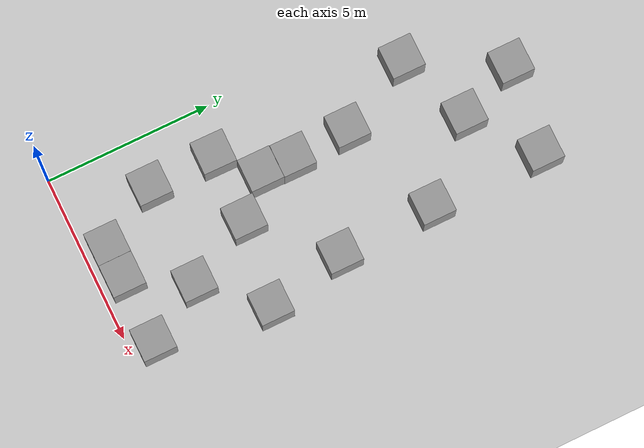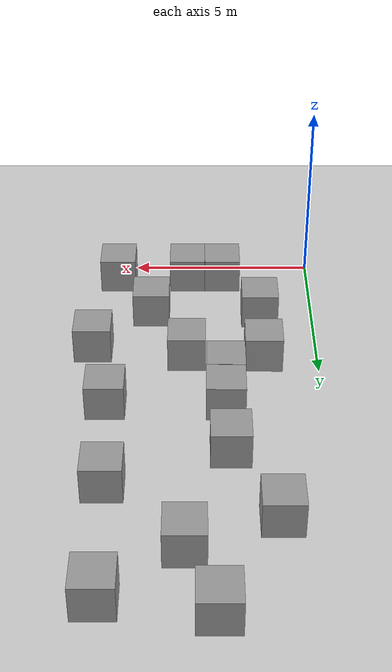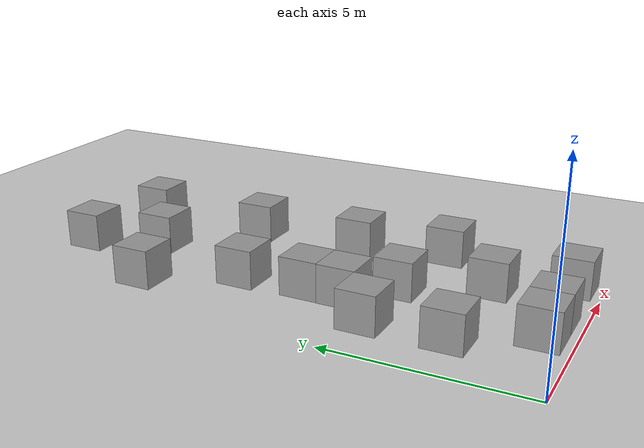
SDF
<sdf version="1.6">
 <world name="default">
  <light name="sun" type="directional">
   <pose>0 0 10 0 -0 0</pose>
   <diffuse>0.8 0.8 0.8 1</diffuse>
   <specular>0.2 0.2 0.2 1</specular>
   <attenuation>
    <range>1000</range>
    <constant>0.9</constant>
    <linear>0.01</linear>
    <quadratic>0.001</quadratic>
   </attenuation>
   <direction>-0.5 0.1 -0.9</direction>
  </light>
  <model name="ground_plane">
   <static>1</static>
   <link name="link">
    <collision name="collision">
     <geometry><plane><normal>0 0 1</normal><size>100 100</size></plane></geometry>
     <surface>
      <contact><collide_bitmask>65535</collide_bitmask></contact>
      <friction><ode><mu>100</mu><mu2>50</mu2></ode></friction>
     </surface>
    </collision>
    <visual name="visual">
     <cast_shadows>0</cast_shadows>
     <geometry><plane><normal>0 0 1</normal><size>100 100</size></plane></geometry>
     <material>
      <script><uri>file://media/materials/scripts/gazebo.material</uri><name>Gazebo/Grey</name></script>
     </material>
    </visual>
   </link>
  </model>
  <gravity>0 0 -9.8</gravity>
  <magnetic_field>6e-06 2.3e-05 -4.2e-05</magnetic_field>
  <atmosphere type="adiabatic"/>
  <physics name="default_physics" default="0" type="ode">
   <max_step_size>0.001</max_step_size>
   <real_time_factor>1</real_time_factor>
   <real_time_update_rate>1000</real_time_update_rate>
  </physics>
  <scene><ambient>0.4 0.4 0.4 1</ambient><background>0.7 0.7 0.7 1</background><shadows>1</shadows></scene>
  <audio><device>default</device></audio>
  <spherical_coordinates>
   <surface_model>EARTH_WGS84</surface_model>
   <latitude_deg>0</latitude_deg>
   <longitude_deg>0</longitude_deg>
   <elevation>0</elevation>
   <heading_deg>0</heading_deg>
  </spherical_coordinates>
  <model name="unit_box">
   <pose>2.49709 0.724493 0.5 0 -0 0.000389</pose>
   <link name="link">
    <inertial>
     <mass>1</mass>
     <inertia>
      <ixx>0.166667</ixx>
      <ixy>0</ixy>
      <ixz>0</ixz>
      <iyy>0.166667</iyy>
      <iyz>0</iyz>
      <izz>0.166667</izz>
     </inertia>
    </inertial>
    <collision name="collision"><geometry><box><size>1 1 1</size></box></geometry></collision>
    <visual name="visual">
     <geometry><box><size>1 1 1</size></box></geometry>
     <material>
      <script><name>Gazebo/Grey</name><uri>file://media/materials/scripts/gazebo.material</uri></script>
     </material>
    </visual>
   </link>
  </model>
  <model name="unit_box_0">
   <pose>4.49431 2.47051 0.5 -0 -0 -1e-05</pose>
   <link name="link">
    <inertial>
     <mass>1</mass>
     <inertia>
      <ixx>0.166667</ixx>
      <ixy>0</ixy>
      <ixz>0</ixz>
      <iyy>0.166667</iyy>
      <iyz>0</iyz>
      <izz>0.166667</izz>
     </inertia>
    </inertial>
    <collision name="collision"><geometry><box><size>1 1 1</size></box></geometry></collision>
    <visual name="visual">
     <geometry><box><size>1 1 1</size></box></geometry>
     <material>
      <script><name>Gazebo/Grey</name><uri>file://media/materials/scripts/gazebo.material</uri></script>
     </material>
    </visual>
   </link>
  </model>
  <model name="unit_box_1">
   <pose>3.49758 11.3735 0.5 0 -0 5e-06</pose>
   <link name="link">
    <inertial>
     <mass>1</mass>
     <inertia>
      <ixx>0.166667</ixx>
      <ixy>0</ixy>
      <ixz>0</ixz>
      <iyy>0.166667</iyy>
      <iyz>0</iyz>
      <izz>0.166667</izz>
     </inertia>
    </inertial>
    <collision name="collision"><geometry><box><size>1 1 1</size></box></geometry></collision>
    <visual name="visual">
     <geometry><box><size>1 1 1</size></box></geometry>
     <material>
      <script><name>Gazebo/Grey</name><uri>file://media/materials/scripts/gazebo.material</uri></script>
     </material>
    </visual>
   </link>
  </model>
  <model name="unit_box_2">
   <pose>5.4959 0.724326 0.5 0 0 -1.7e-05</pose>
   <link name="link">
    <inertial>
     <mass>1</mass>
     <inertia>
      <ixx>0.166667</ixx>
      <ixy>0</ixy>
      <ixz>0</ixz>
      <iyy>0.166667</iyy>
      <iyz>0</iyz>
      <izz>0.166667</izz>
     </inertia>
    </inertial>
    <collision name="collision"><geometry><box><size>1 1 1</size></box></geometry></collision>
    <visual name="visual">
     <geometry><box><size>1 1 1</size></box></geometry>
     <material>
      <script><name>Gazebo/Grey</name><uri>file://media/materials/scripts/gazebo.material</uri></script>
     </material>
    </visual>
   </link>
  </model>
  <model name="unit_box_3">
   <pose>1.48123 2.50916 0.5 0 -0 5e-06</pose>
   <link name="link">
    <inertial>
     <mass>1</mass>
     <inertia>
      <ixx>0.166667</ixx>
      <ixy>0</ixy>
      <ixz>0</ixz>
      <iyy>0.166667</iyy>
      <iyz>0</iyz>
      <izz>0.166667</izz>
     </inertia>
    </inertial>
    <collision name="collision"><geometry><box><size>1 1 1</size></box></geometry></collision>
    <visual name="visual">
     <geometry><box><size>1 1 1</size></box></geometry>
     <material>
      <script><name>Gazebo/Grey</name><uri>file://media/materials/scripts/gazebo.material</uri></script>
     </material>
    </visual>
   </link>
  </model>
  <model name="unit_box_4">
   <pose>5.38168 12.833 0.5 -0 -0 -1e-05</pose>
   <link name="link">
    <inertial>
     <mass>1</mass>
     <inertia>
      <ixx>0.166667</ixx>
      <ixy>0</ixy>
      <ixz>0</ixz>
      <iyy>0.166667</iyy>
      <iyz>0</iyz>
      <izz>0.166667</izz>
     </inertia>
    </inertial>
    <collision name="collision"><geometry><box><size>1 1 1</size></box></geometry></collision>
    <visual name="visual">
     <geometry><box><size>1 1 1</size></box></geometry>
     <material>
      <script><name>Gazebo/Grey</name><uri>file://media/materials/scripts/gazebo.material</uri></script>
     </material>
    </visual>
   </link>
  </model>
  <model name="unit_box_5">
   <pose>2.49618 6.49721 0.5 0 -0 -0.008404</pose>
   <link name="link">
    <inertial>
     <mass>1</mass>
     <inertia>
      <ixx>0.166667</ixx>
      <ixy>0</ixy>
      <ixz>0</ixz>
      <iyy>0.166667</iyy>
      <iyz>0</iyz>
      <izz>0.166667</izz>
     </inertia>
    </inertial>
    <collision name="collision"><geometry><box><size>1 1 1</size></box></geometry></collision>
    <visual name="visual">
     <geometry><box><size>1 1 1</size></box></geometry>
     <material>
      <script><name>Gazebo/Grey</name><uri>file://media/materials/scripts/gazebo.material</uri></script>
     </material>
    </visual>
   </link>
  </model>
  <model name="unit_box_6">
   <pose>3.49777 0.724456 0.5 0 -0 0.000232</pose>
   <link name="link">
    <inertial>
     <mass>1</mass>
     <inertia>
      <ixx>0.166667</ixx>
      <ixy>0</ixy>
      <ixz>0</ixz>
      <iyy>0.166667</iyy>
      <iyz>0</iyz>
      <izz>0.166667</izz>
     </inertia>
    </inertial>
    <collision name="collision"><geometry><box><size>1 1 1</size></box></geometry></collision>
    <visual name="visual">
     <geometry><box><size>1 1 1</size></box></geometry>
     <material>
      <script><name>Gazebo/Grey</name><uri>file://media/materials/scripts/gazebo.material</uri></script>
     </material>
    </visual>
   </link>
  </model>
  <model name="unit_box_7">
   <pose>3.50076 4.48576 0.5 -0 -0 -0</pose>
   <link name="link">
    <inertial>
     <mass>1</mass>
     <inertia>
      <ixx>0.166667</ixx>
      <ixy>0</ixy>
      <ixz>0</ixz>
      <iyy>0.166667</iyy>
      <iyz>0</iyz>
      <izz>0.166667</izz>
     </inertia>
    </inertial>
    <collision name="collision"><geometry><box><size>1 1 1</size></box></geometry></collision>
    <visual name="visual">
     <geometry><box><size>1 1 1</size></box></geometry>
     <material>
      <script><name>Gazebo/Grey</name><uri>file://media/materials/scripts/gazebo.material</uri></script>
     </material>
    </visual>
   </link>
  </model>
  <model name="unit_box_8">
   <pose>1.45805 4.51006 0.5 -0 -0 -0.012728</pose>
   <link name="link">
    <inertial>
     <mass>1</mass>
     <inertia>
      <ixx>0.166667</ixx>
      <ixy>0</ixy>
      <ixz>0</ixz>
      <iyy>0.166667</iyy>
      <iyz>0</iyz>
      <izz>0.166667</izz>
     </inertia>
    </inertial>
    <collision name="collision"><geometry><box><size>1 1 1</size></box></geometry></collision>
    <visual name="visual">
     <geometry><box><size>1 1 1</size></box></geometry>
     <material>
      <script><name>Gazebo/Grey</name><uri>file://media/materials/scripts/gazebo.material</uri></script>
     </material>
    </visual>
   </link>
  </model>
  <model name="unit_box_9">
   <pose>2.47856 5.495 0.5 0 0 -0.003832</pose>
   <link name="link">
    <inertial>
     <mass>1</mass>
     <inertia>
      <ixx>0.166667</ixx>
      <ixy>0</ixy>
      <ixz>0</ixz>
      <iyy>0.166667</iyy>
      <iyz>0</iyz>
      <izz>0.166667</izz>
     </inertia>
    </inertial>
    <collision name="collision"><geometry><box><size>1 1 1</size></box></geometry></collision>
    <visual name="visual">
     <geometry><box><size>1 1 1</size></box></geometry>
     <material>
      <script><name>Gazebo/Grey</name><uri>file://media/materials/scripts/gazebo.material</uri></script>
     </material>
    </visual>
   </link>
  </model>
  <model name="unit_box_10">
   <pose>2.76631 13.1983 0.5 0 -0 1e-05</pose>
   <link name="link">
    <inertial>
     <mass>1</mass>
     <inertia>
      <ixx>0.166667</ixx>
      <ixy>0</ixy>
      <ixz>0</ixz>
      <iyy>0.166667</iyy>
      <iyz>0</iyz>
      <izz>0.166667</izz>
     </inertia>
    </inertial>
    <collision name="collision"><geometry><box><size>1 1 1</size></box></geometry></collision>
    <visual name="visual">
     <geometry><box><size>1 1 1</size></box></geometry>
     <material>
      <script><name>Gazebo/Grey</name><uri>file://media/materials/scripts/gazebo.material</uri></script>
     </material>
    </visual>
   </link>
  </model>
  <model name="unit_box_11">
   <pose>6.01456 4.10323 0.499995 -1e-05 -0 -0</pose>
   <link name="link">
    <inertial>
     <mass>1</mass>
     <inertia>
      <ixx>0.166667</ixx>
      <ixy>0</ixy>
      <ixz>0</ixz>
      <iyy>0.166667</iyy>
      <iyz>0</iyz>
      <izz>0.166667</izz>
     </inertia>
    </inertial>
    <collision name="collision"><geometry><box><size>1 1 1</size></box></geometry></collision>
    <visual name="visual">
     <geometry><box><size>1 1 1</size></box></geometry>
     <material>
      <script><name>Gazebo/Grey</name><uri>file://media/materials/scripts/gazebo.material</uri></script>
     </material>
    </visual>
   </link>
  </model>
  <model name="unit_box_12">
   <pose>5.54465 6.47702 0.5 0 -0 5e-06</pose>
   <link name="link">
    <inertial>
     <mass>1</mass>
     <inertia>
      <ixx>0.166667</ixx>
      <ixy>0</ixy>
      <ixz>0</ixz>
      <iyy>0.166667</iyy>
      <iyz>0</iyz>
      <izz>0.166667</izz>
     </inertia>
    </inertial>
    <collision name="collision"><geometry><box><size>1 1 1</size></box></geometry></collision>
    <visual name="visual">
     <geometry><box><size>1 1 1</size></box></geometry>
     <material>
      <script><name>Gazebo/Grey</name><uri>file://media/materials/scripts/gazebo.material</uri></script>
     </material>
    </visual>
   </link>
  </model>
  <model name="unit_box_13">
   <pose>5.42867 9.41063 0.5 -0 -0 -0</pose>
   <link name="link">
    <inertial>
     <mass>1</mass>
     <inertia>
      <ixx>0.166667</ixx>
      <ixy>0</ixy>
      <ixz>0</ixz>
      <iyy>0.166667</iyy>
      <iyz>0</iyz>
      <izz>0.166667</izz>
     </inertia>
    </inertial>
    <collision name="collision"><geometry><box><size>1 1 1</size></box></geometry></collision>
    <visual name="visual">
     <geometry><box><size>1 1 1</size></box></geometry>
     <material>
      <script><name>Gazebo/Grey</name><uri>file://media/materials/scripts/gazebo.material</uri></script>
     </material>
    </visual>
   </link>
  </model>
  <model name="unit_box_14">
   <pose>2.41258 8.23538 0.5 0 -0 2.8e-05</pose>
   <link name="link">
    <inertial>
     <mass>1</mass>
     <inertia>
      <ixx>0.166667</ixx>
      <ixy>0</ixy>
      <ixz>0</ixz>
      <iyy>0.166667</iyy>
      <iyz>0</iyz>
      <izz>0.166667</izz>
     </inertia>
    </inertial>
    <collision name="collision"><geometry><box><size>1 1 1</size></box></geometry></collision>
    <visual name="visual">
     <geometry><box><size>1 1 1</size></box></geometry>
     <material>
      <script><name>Gazebo/Grey</name><uri>file://media/materials/scripts/gazebo.material</uri></script>
     </material>
    </visual>
   </link>
  </model>
  <model name="unit_box_15">
   <pose>1.29929 10.4852 0.5 0 -0 5e-06</pose>
   <link name="link">
    <inertial>
     <mass>1</mass>
     <inertia>
      <ixx>0.166667</ixx>
      <ixy>0</ixy>
      <ixz>0</ixz>
      <iyy>0.166667</iyy>
      <iyz>0</iyz>
      <izz>0.166667</izz>
     </inertia>
    </inertial>
    <collision name="collision"><geometry><box><size>1 1 1</size></box></geometry></collision>
    <visual name="visual">
     <geometry><box><size>1 1 1</size></box></geometry>
     <material>
      <script><name>Gazebo/Grey</name><uri>file://media/materials/scripts/gazebo.material</uri></script>
     </material>
    </visual>
   </link>
  </model>
 </world>
</sdf>
